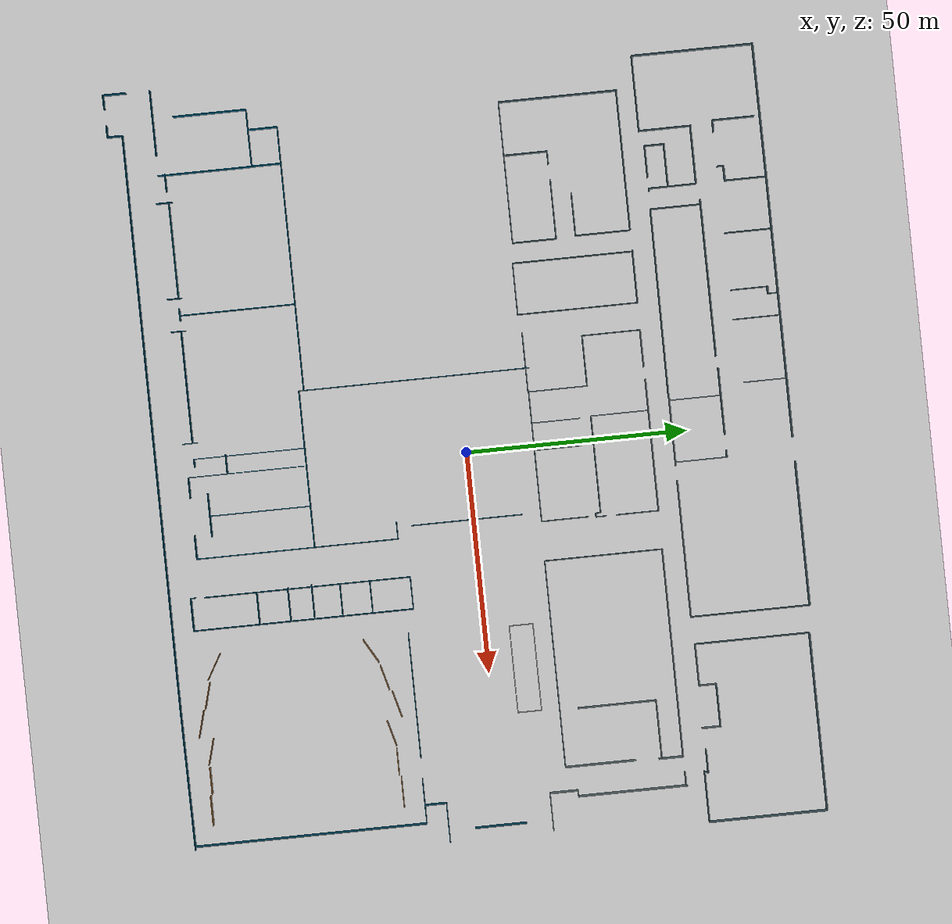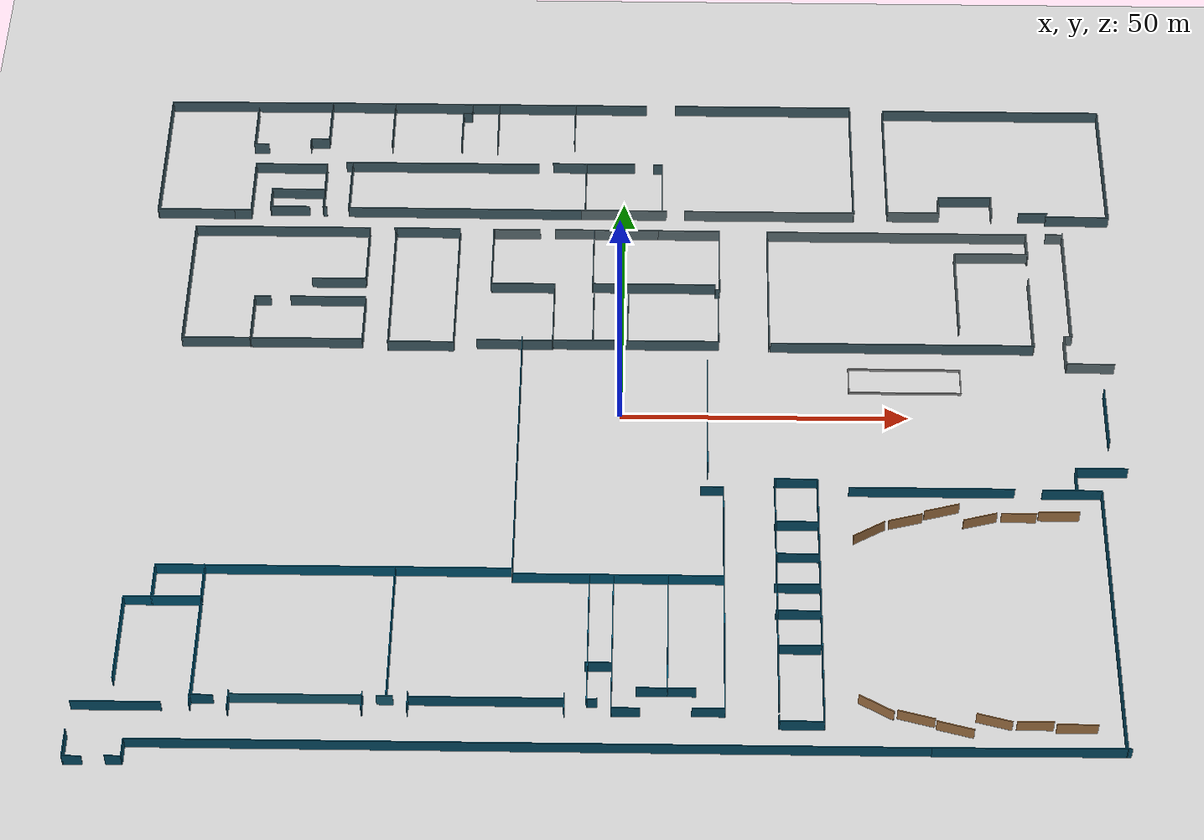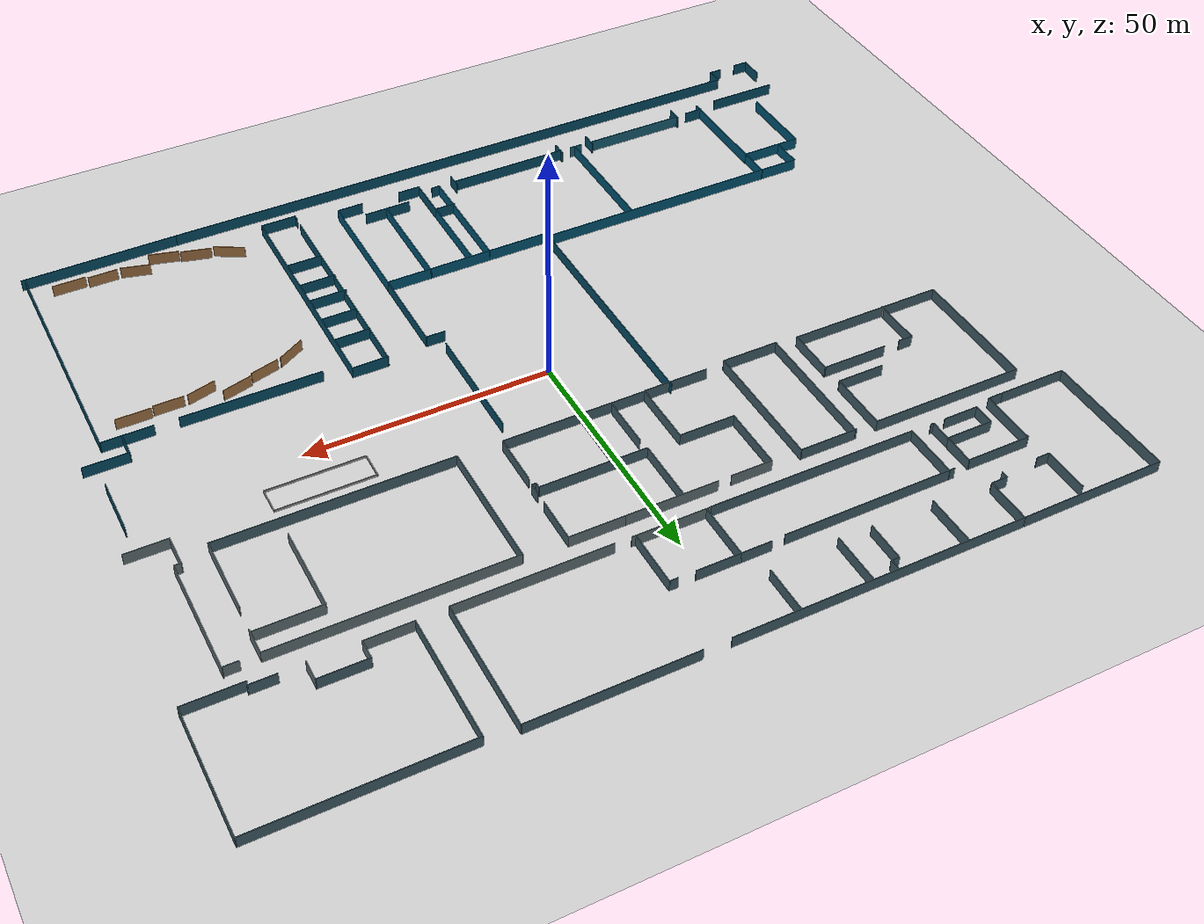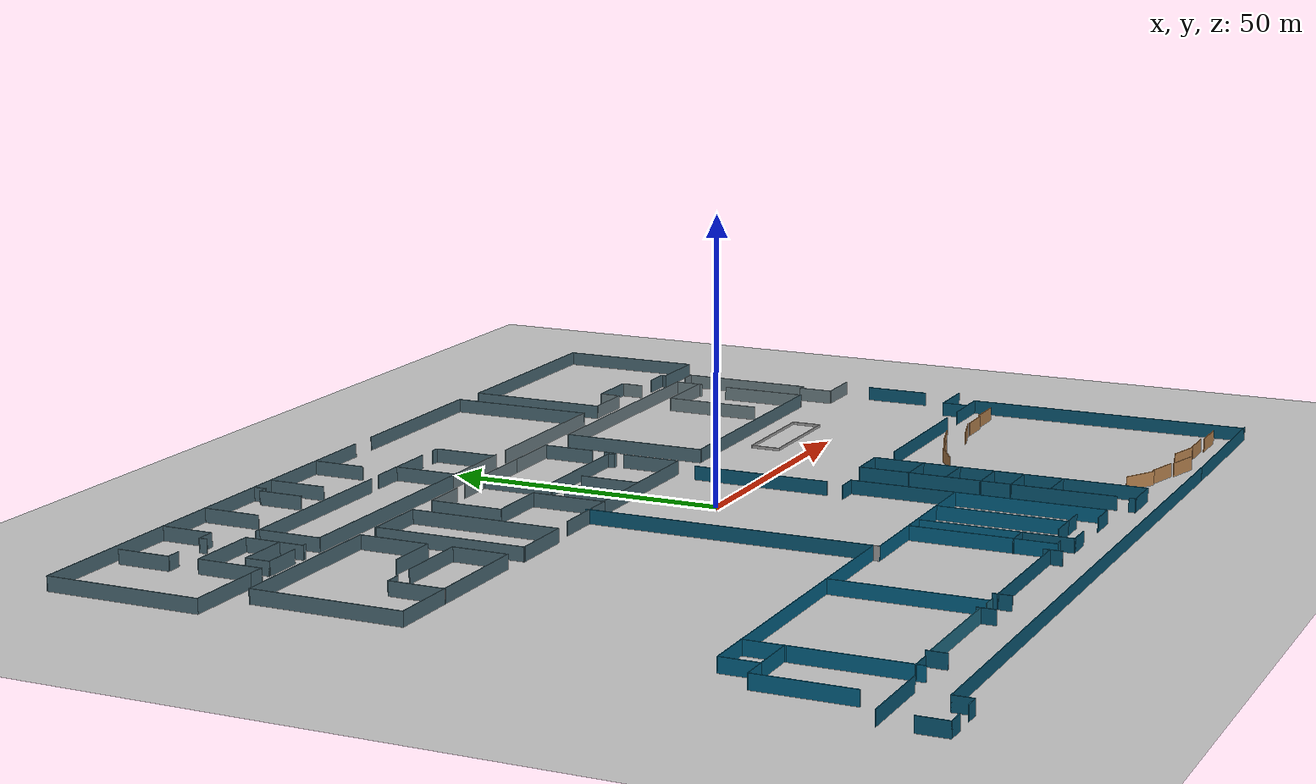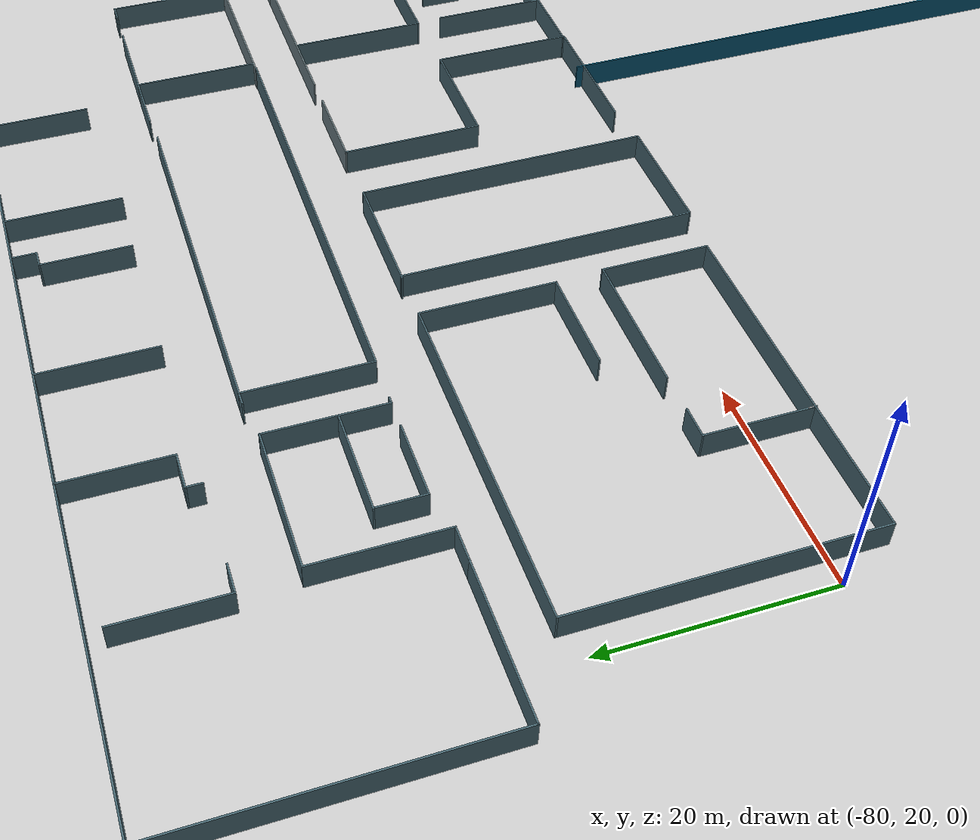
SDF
<?xml version="1.0" ?>

<sdf version="1.4">
  <world name="default">
    <physics name="r_1000" type="ode" default="true">
      <max_step_size>0.001</max_step_size>
      <real_time_update_rate>1000</real_time_update_rate>
    </physics>
    <physics name="r_750" type="ode">
      <max_step_size>0.001</max_step_size>
      <real_time_update_rate>750</real_time_update_rate>
    </physics>
    <physics name="r_500" type="ode">
      <max_step_size>0.001</max_step_size>
      <real_time_update_rate>500</real_time_update_rate>
    </physics>
    <physics name="r_250" type="ode">
      <max_step_size>0.001</max_step_size>
      <real_time_update_rate>250</real_time_update_rate>
    </physics>

    <include>
      <uri>model://ground_plane</uri>
    </include>

    <include>
      <uri>model://sun</uri>
    </include>

    <include>
      <uri>model://eceb</uri>
    </include>

  </world>
</sdf>
